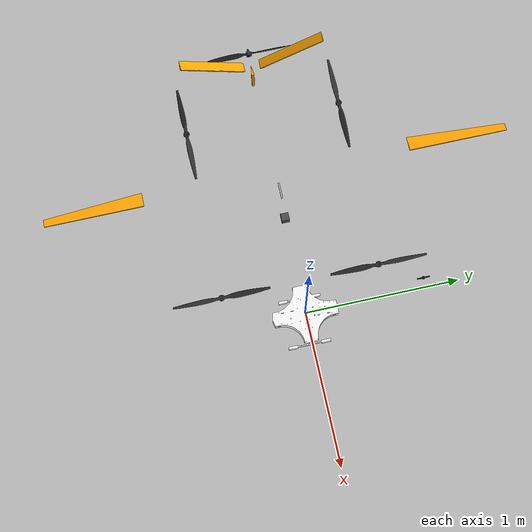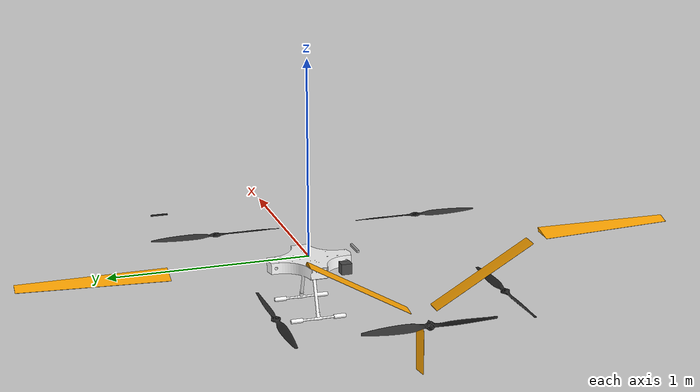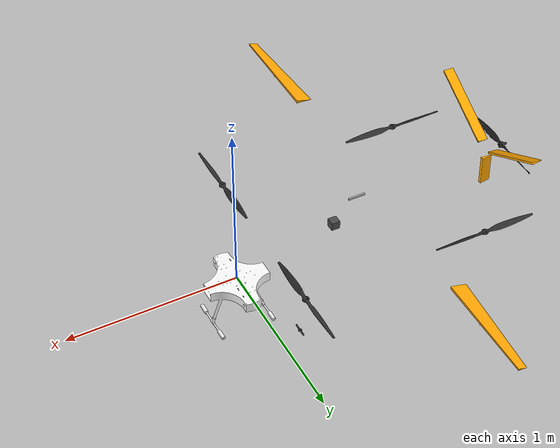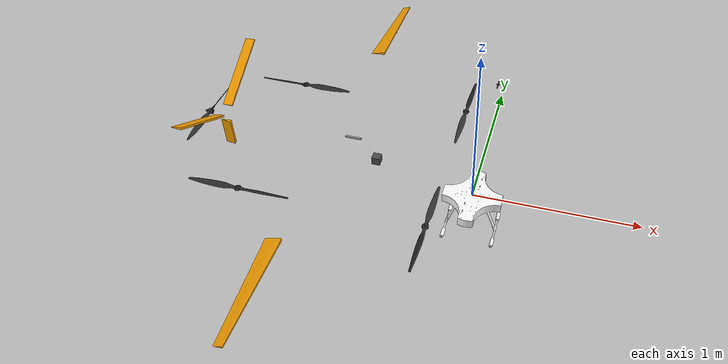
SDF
<?xml version="1.0"?>
<!-- This was manually edited after being generated from URDF -->
<sdf version='1.5'>
  <model name='sentaero6_prod'>
    <pose>0 0 0 0 0 0</pose>

    <link name='base_link'>
      <pose>0 0 0 0 0 1.57</pose>
      <inertial>
        <pose>0 0.739251 0.291891 0 -0 0</pose>
        <mass>17.08456</mass>
        <inertia>
          <ixx>3</ixx>
          <ixy>0</ixy>
          <ixz>0</ixz>
          <iyy>5</iyy>
          <iyz>0</iyz>
          <izz>6.754</izz>
        </inertia>
      </inertial>
      <collision name='base_link_collision'>
        <pose>0 0.9 -0.01 0 -0 0</pose>
        <geometry>
          <box>
            <size>3 1.7 0.05</size>
          </box>
        </geometry>
        <surface>
          <contact>
            <ode>
              <kp>100000</kp>
              <kd>1.0</kd>
              <max_vel>0.1</max_vel>
              <min_depth>0.001</min_depth>
            </ode>
          </contact>
          <friction>
            <ode/>
          </friction>
        </surface>
      </collision>
      <visual name='base_link_visual'>
        <pose>0 0 0 0 -0 0</pose>
        <geometry>
          <mesh>
            <scale>0.001 0.001 0.001</scale>
            <uri>model://sentaero6_prod/meshes/base_link.stl</uri>
          </mesh>
        </geometry>
        <material>
          <!-- flat white -->
          <ambient>0.85 0.85 0.85 1.0</ambient>
          <diffuse>1.0 1.0 1.0 1.0</diffuse>
          <!-- high‐gloss highlight -->
          <specular>0.8 0.8 0.8 1.0</specular>
          <!-- no self‐illumination -->
          <emissive>0.0 0.0 0.0 1.0</emissive>
        </material>
        <transparency>0</transparency>
      </visual>
      <self_collide>0</self_collide>
      <velocity_decay/>
      <gravity>1</gravity>
    </link>

    <link name='sentaero6_prod/imu_link'>
      <pose relative_to='sentaero6_prod/imu_joint'>0 0 0 0 0 0</pose>
      <inertial>
        <pose>0 0 0 0 0 0</pose>
        <mass>0.015</mass>
        <inertia>
          <ixx>1e-05</ixx>
          <ixy>0</ixy>
          <ixz>0</ixz>
          <iyy>1e-05</iyy>
          <iyz>0</iyz>
          <izz>1e-05</izz>
        </inertia>
      </inertial>
      <visual name='imu_link_visual'>
        <pose>0 0 0 0 -0 0</pose>
        <geometry>
          <box>
            <size>0.1 0.01 0.01</size>
          </box>
        </geometry>
      </visual>
    </link>
    <joint name='sentaero6_prod/imu_joint' type='revolute'>
      <pose relative_to='base_link'>-1e-06 0.739226 0.291889 0 -0 -1.57079632679</pose>
      <child>sentaero6_prod/imu_link</child>
      <parent>base_link</parent>
      <axis>
        <xyz>1 0 0</xyz>
        <limit>
          <lower>0</lower>
          <upper>0</upper>
          <effort>0</effort>
          <velocity>0</velocity>
        </limit>
        <dynamics>
          <spring_reference>0</spring_reference>
          <spring_stiffness>0</spring_stiffness>
        </dynamics>
        <use_parent_model_frame>1</use_parent_model_frame>
      </axis>
    </joint>

    <include>
      <uri>model://airspeed</uri>
      <pose relative_to='base_link'>-1e-06 0.739226 0.291889 0 -0 -1.57079632679</pose>
      <name>airspeed</name>
    </include>
    <joint name='airspeed_joint' type='fixed'>
      <child>airspeed::link</child>
      <parent>base_link</parent>
    </joint>

    <include>
      <uri>model://gps</uri>
      <pose relative_to='base_link'>-1e-06 0.739226 0.291889 0 -0 -1.57</pose>
      <name>gps</name>
    </include>
    <joint name='gps_joint' type='fixed'>
      <child>gps::link</child>
      <parent>base_link</parent>
    </joint>

    <link name="camera_link">
      <pose>-0.6 0 0.15 0 1.57 0</pose>
      <inertial>
        <pose>0 0 0 0 0 0</pose>
        <mass>0.1</mass>
        <inertia>
          <ixx>0.001</ixx>
          <ixy>0</ixy>
          <ixz>0</ixz>
          <iyy>0.001</iyy>
          <iyz>0</iyz>
          <izz>0.001</izz>
        </inertia>
      </inertial>
      <collision name='camera_collision'>
        <pose>0 0 0 0 0 0</pose>
        <geometry>
          <sphere>
            <radius>0.035</radius>
          </sphere>
        </geometry>
        <surface>
          <friction>
            <ode>
              <mu>1</mu>
              <mu2>1</mu2>
            </ode>
          </friction>
          <contact>
            <ode>
              <kp>1e+8</kp>
              <kd>1</kd>
              <max_vel>0.01</max_vel>
              <min_depth>0.001</min_depth>
            </ode>
          </contact>
        </surface>
      </collision>
      <visual name='camera_visual'>
        <pose>0 0 0 0 0 3.141592</pose>
        <geometry>
          <box>
            <size>0.05 0.05 0.05</size>
          </box>
        </geometry>
        <material>
          <script>
            <name>Gazebo/DarkGrey</name>
            <uri>file://media/materials/scripts/gazebo.material</uri>
          </script>
        </material>
      </visual>
      <sensor name="camera_imu" type="imu">
        <always_on>1</always_on>
      </sensor>
      <sensor name="camera" type="camera">
        <pose>0 0 0 0 0 0</pose>
        <camera>
          <horizontal_fov>2.0</horizontal_fov>
          <image>
            <format>R8G8B8</format>
            <width>640</width>
            <height>360</height>
          </image>
          <clip>
            <near>0.05</near>
            <far>15000</far>
          </clip>
        </camera>
        <always_on>1</always_on>
        <update_rate>10</update_rate>
        <visualize>false</visualize>
        <plugin name="GstCameraPlugin" filename="libgazebo_gst_camera_plugin.so">
            <robotNamespace></robotNamespace>
            <udpHost>127.0.0.1</udpHost>
            <udpPort>5600</udpPort>
        </plugin>
        <plugin name="GstCameraPlugin2" filename="libgazebo_gst_camera_plugin.so">
            <robotNamespace></robotNamespace>
            <udpHost>127.0.0.1</udpHost>
            <udpPort>5601</udpPort>
        </plugin>
        <plugin name="CameraManagerPlugin" filename="libgazebo_camera_manager_plugin.so">
            <robotNamespace>sentaero6_prod</robotNamespace>
            <interval>1</interval>
            <width>3840</width>
            <height>2160</height>
            <maximum_zoom>8.0</maximum_zoom>
            <video_uri>udp://127.0.0.1:5600</video_uri>
            <system_id>1</system_id>
            <cam_component_id>100</cam_component_id>
            <mavlink_cam_udp_port>14530</mavlink_cam_udp_port>
        </plugin>
      </sensor>
    </link>
    <joint name='camera_joint' type='fixed'>
      <child>camera_link</child>
      <parent>base_link</parent>
      <axis>
        <xyz>0 -1 0</xyz>
        <limit>
          <lower>-1.5708</lower>
          <upper>0.7854</upper>
          <effort>100</effort>
          <velocity>-1</velocity>
        </limit>
        <dynamics>
          <damping>0.1</damping>
        </dynamics>
        <use_parent_model_frame>1</use_parent_model_frame>
      </axis>
      <physics>
        <ode>
          <implicit_spring_damper>1</implicit_spring_damper>
          <limit>
            <cfm>0.1</cfm>
            <erp>0.2</erp>
          </limit>
        </ode>
      </physics>
    </joint>

    <joint name='front_left_prop_rev' type='revolute'>
      <pose relative_to='base_link'>0.500381 0.16 0.223364 0 -0 0</pose>
      <parent>base_link</parent>
      <child>front_left_prop_1</child>
      <axis>
        <xyz>0 0 1</xyz>
        <limit>
          <lower>-1e+16</lower>
          <upper>1e+16</upper>
        </limit>
        <dynamics>
          <spring_reference>0</spring_reference>
          <spring_stiffness>0</spring_stiffness>
        </dynamics>
      </axis>
      <sensor name="front_left_prop_force_sensor" type="force_torque">
        <always_on>1</always_on>
        <update_rate>200</update_rate>          <!-- must be > 0 -->
        <visualize>false</visualize>             <!-- will also draw arrows in GUI -->
        <topic>front_left_prop_force/wrench</topic>               <!-- choose a simple topic name -->
        <force_torque>
          <frame>child</frame>
          <measure_direction>child_to_parent</measure_direction>
        </force_torque>
      </sensor>
    </joint>
    <link name='front_left_prop_1'>
      <pose relative_to='front_left_prop_rev'>0 0 0 0 -0 0</pose>
      <inertial>
        <pose>-0 -0 -0.00365 0 -0 0</pose>
        <mass>0.005</mass>
        <inertia>
          <ixx>9.75e-07</ixx>
          <ixy>0</ixy>
          <ixz>0</ixz>
          <iyy>0.000166704</iyy>
          <iyz>0</iyz>
          <izz>0.000167604</izz>
        </inertia>
      </inertial>
      <collision name='front_left_prop_1_collision'>
        <pose>-0.500381 -0.16 -0.223364 0 -0 0</pose>
        <geometry>
          <mesh>
            <scale>0.001 0.001 0.001</scale>
            <uri>model://sentaero6_prod/meshes/front_left_prop_1.stl</uri>
          </mesh>
        </geometry>
        <surface>
          <contact>
            <ode/>
          </contact>
          <friction>
            <ode/>
          </friction>
        </surface>
      </collision>
      <visual name='front_left_prop_1_visual'>
        <pose>-0.500381 -0.16 -0.223364 0 -0 0</pose>
        <geometry>
          <mesh>
            <scale>0.001 0.001 0.001</scale>
            <uri>model://sentaero6_prod/meshes/front_left_prop_1.stl</uri>
          </mesh>
        </geometry>
        <material>
          <ambient>.175 .175 .175 1.0</ambient>
          <diffuse>.175 .175 .175 1.0</diffuse>
        </material>
      </visual>
      <gravity>1</gravity>
      <velocity_decay/>
      <self_collide>0</self_collide>
    </link>

    <joint name='front_right_prop_rev' type='revolute'>
      <pose relative_to='base_link'>-0.500381 0.16 0.223364 0 -0 0</pose>
      <parent>base_link</parent>
      <child>front_right_prop_1</child>
      <axis>
        <xyz>0 0 1</xyz>
        <limit>
          <lower>-1e+16</lower>
          <upper>1e+16</upper>
        </limit>
        <dynamics>
          <spring_reference>0</spring_reference>
          <spring_stiffness>0</spring_stiffness>
        </dynamics>
      </axis>
    </joint>
    <link name='front_right_prop_1'>
      <pose relative_to='front_right_prop_rev'>0 0 0 0 -0 0</pose>
      <inertial>
        <pose>-0 -0 -0.00365 0 -0 0</pose>
        <mass>0.005</mass>
        <inertia>
          <ixx>9.75e-07</ixx>
          <ixy>0</ixy>
          <ixz>0</ixz>
          <iyy>0.000166704</iyy>
          <iyz>0</iyz>
          <izz>0.000167604</izz>
        </inertia>
      </inertial>
      <collision name='front_right_prop_1_collision'>
        <pose>0.500381 -0.16 -0.223364 0 -0 0</pose>
        <geometry>
          <mesh>
            <scale>0.001 0.001 0.001</scale>
            <uri>model://sentaero6_prod/meshes/front_right_prop_1.stl</uri>
          </mesh>
        </geometry>
        <surface>
          <contact>
            <ode/>
          </contact>
          <friction>
            <ode/>
          </friction>
        </surface>
      </collision>
      <visual name='front_right_prop_1_visual'>
        <pose>0.500381 -0.16 -0.223364 0 -0 0</pose>
        <geometry>
          <mesh>
            <scale>0.001 0.001 0.001</scale>
            <uri>model://sentaero6_prod/meshes/front_right_prop_1.stl</uri>
          </mesh>
        </geometry>
        <material>
          <ambient>.175 .175 .175 1.0</ambient>
          <diffuse>.175 .175 .175 1.0</diffuse>
        </material>
      </visual>
      <gravity>1</gravity>
      <velocity_decay/>
      <self_collide>0</self_collide>
    </link>

    <joint name='rear_left_prop_rev' type='revolute'>
      <pose relative_to='base_link'>0.500381 1.26 0.223364 0 -0 0</pose>
      <parent>base_link</parent>
      <child>rear_left_prop_1</child>
      <axis>
        <xyz>0 0 1</xyz>
        <limit>
          <lower>-1e+16</lower>
          <upper>1e+16</upper>
        </limit>
        <dynamics>
          <spring_reference>0</spring_reference>
          <spring_stiffness>0</spring_stiffness>
        </dynamics>
      </axis>
    </joint>
    <link name='rear_left_prop_1'>
      <pose relative_to='rear_left_prop_rev'>0 0 0 0 -0 0</pose>
      <inertial>
        <pose>-0 0 -0.00365 0 -0 0</pose>
        <mass>0.005</mass>
        <inertia>
          <ixx>9.75e-07</ixx>
          <ixy>0</ixy>
          <ixz>0</ixz>
          <iyy>0.000166704</iyy>
          <iyz>0</iyz>
          <izz>0.000167604</izz>
        </inertia>
      </inertial>
      <collision name='rear_left_prop_1_collision'>
        <pose>-0.500381 -1.26 -0.223364 0 -0 0</pose>
        <geometry>
          <mesh>
            <scale>0.001 0.001 0.001</scale>
            <uri>model://sentaero6_prod/meshes/rear_left_prop_1.stl</uri>
          </mesh>
        </geometry>
        <surface>
          <contact>
            <ode/>
          </contact>
          <friction>
            <ode/>
          </friction>
        </surface>
      </collision>
      <visual name='rear_left_prop_1_visual'>
        <pose>-0.500381 -1.26 -0.223364 0 -0 0</pose>
        <geometry>
          <mesh>
            <scale>0.001 0.001 0.001</scale>
            <uri>model://sentaero6_prod/meshes/rear_left_prop_1.stl</uri>
          </mesh>
        </geometry>
        <material>
          <ambient>.175 .175 .175 1.0</ambient>
          <diffuse>.175 .175 .175 1.0</diffuse>
        </material>
      </visual>
      <gravity>1</gravity>
      <velocity_decay/>
      <self_collide>0</self_collide>
    </link>

    <joint name='rear_right_prop_rev' type='revolute'>
      <pose relative_to='base_link'>-0.500381 1.26 0.223364 0 -0 0</pose>
      <parent>base_link</parent>
      <child>rear_right_prop_1</child>
      <axis>
        <xyz>0 0 1</xyz>
        <limit>
          <lower>-1e+16</lower>
          <upper>1e+16</upper>
        </limit>
        <dynamics>
          <spring_reference>0</spring_reference>
          <spring_stiffness>0</spring_stiffness>
        </dynamics>
      </axis>
    </joint>
    <link name='rear_right_prop_1'>
      <pose relative_to='rear_right_prop_rev'>0 0 0 0 -0 0</pose>
      <inertial>
        <pose>0 0 -0.00365 0 -0 0</pose>
        <mass>0.005</mass>
        <inertia>
          <ixx>9.75e-07</ixx>
          <ixy>0</ixy>
          <ixz>0</ixz>
          <iyy>0.000166704</iyy>
          <iyz>0</iyz>
          <izz>0.000167604</izz>
        </inertia>
      </inertial>
      <collision name='rear_right_prop_1_collision'>
        <pose>0.500381 -1.26 -0.223364 0 -0 0</pose>
        <geometry>
          <mesh>
            <scale>0.001 0.001 0.001</scale>
            <uri>model://sentaero6_prod/meshes/rear_right_prop_1.stl</uri>
          </mesh>
        </geometry>
        <surface>
          <contact>
            <ode/>
          </contact>
          <friction>
            <ode/>
          </friction>
        </surface>
      </collision>
      <visual name='rear_right_prop_1_visual'>
        <pose>0.500381 -1.26 -0.223364 0 -0 0</pose>
        <geometry>
          <mesh>
            <scale>0.001 0.001 0.001</scale>
            <uri>model://sentaero6_prod/meshes/rear_right_prop_1.stl</uri>
          </mesh>
        </geometry>
        <material>
          <ambient>.175 .175 .175 1.0</ambient>
          <diffuse>.175 .175 .175 1.0</diffuse>
        </material>
      </visual>
      <gravity>1</gravity>
      <velocity_decay/>
      <self_collide>0</self_collide>
    </link>

    <joint name='pusher_prop_rev' type='revolute'>
      <pose relative_to='base_link'>-1e-06 1.66832 0.291889 0 0 0</pose>
      <parent>base_link</parent>
      <child>pusher_prop_1</child>
      <axis>
        <xyz>0 1 0</xyz>
        <limit>
          <lower>-1e+16</lower>
          <upper>1e+16</upper>
        </limit>
        <dynamics>
          <spring_reference>0</spring_reference>
          <spring_stiffness>0</spring_stiffness>
        </dynamics>
      </axis>
      <sensor name="pusher_force_sensor" type="force_torque">
        <always_on>1</always_on>
        <update_rate>200</update_rate>          <!-- must be > 0 -->
        <visualize>false</visualize>             <!-- will also draw arrows in GUI -->
        <topic>pusher_prop_1/wrench</topic>      <!-- choose a simple topic name -->
        <force_torque>
          <frame>child</frame>
          <measure_direction>child_to_parent</measure_direction>
        </force_torque>
      </sensor>
    </joint>
    <link name='pusher_prop_1'>
      <pose relative_to='pusher_prop_rev'>0 0 0 1.57 0 0</pose>
      <inertial>
        <pose>0 0 -0.00365 0 0 0</pose>
        <mass>0.005</mass>
        <inertia>
          <ixx>9.75e-07</ixx>
          <ixy>0</ixy>
          <ixz>0</ixz>
          <iyy>0.000166704</iyy>
          <iyz>0</iyz>
          <izz>0.000167604</izz>
        </inertia>
      </inertial>
      <collision name='pusher_prop_1_collision'>
        <pose>0 -0.293122 1.66832 -1.57 -0 0</pose>
        <geometry>
          <mesh>
            <scale>0.001 0.001 0.001</scale>
            <uri>model://sentaero6_prod/meshes/pusher_prop_1.stl</uri>
          </mesh>
        </geometry>
        <surface>
          <contact>
            <ode/>
          </contact>
          <friction>
            <ode/>
          </friction>
        </surface>
      </collision>
      <visual name='pusher_prop_1_visual'>
        <pose>0 -0.293122 1.66832 -1.57 -0 0</pose>
        <geometry>
          <mesh>
            <scale>0.001 0.001 0.001</scale>
            <uri>model://sentaero6_prod/meshes/pusher_prop_1.stl</uri>
          </mesh>
        </geometry>
        <material>
          <ambient>.175 .175 .175 1.0</ambient>
          <diffuse>.175 .175 .175 1.0</diffuse>
        </material>
      </visual>
      <gravity>1</gravity>
      <velocity_decay/>
      <self_collide>0</self_collide>
    </link>

    <joint name='left_aileron_rev' type='revolute'>
      <pose relative_to='base_link'>1.13918 0.815681 0.308045 0 -0 0</pose>
      <parent>base_link</parent>
      <child>left_aileron_1</child>
      <axis>
        <xyz>0.999982 -0.000405 -0.005981</xyz>
        <limit>
          <!-- -30/+30 deg. -->
          <lower>-0.53</lower>
          <upper>0.53</upper>
        </limit>
        <dynamics>
          <spring_reference>0</spring_reference>
          <spring_stiffness>0</spring_stiffness>
        </dynamics>
      </axis>
    </joint>
    <link name='left_aileron_1'>
      <pose relative_to='left_aileron_rev'>0 0 0 0 -0 0</pose>
      <inertial>
        <pose>-0.021196 0.02562 0.002048 0 -0 0</pose>
        <mass>0.00000001</mass>
        <inertia>
          <ixx>0.000001</ixx>
          <ixy>0.0</ixy>
          <iyy>0.000001</iyy>
          <ixz>0.0</ixz>
          <iyz>0.0</iyz>
          <izz>0.000001</izz>
        </inertia>
      </inertial>
      <visual name='left_aileron_1_visual'>
        <pose>-1.13918 -0.815681 -0.308045 0 -0 0</pose>
        <geometry>
          <mesh>
            <scale>0.001 0.001 0.001</scale>
            <uri>model://sentaero6_prod/meshes/left_aileron_1.stl</uri>
          </mesh>
        </geometry>
        <material>
          <ambient>1.0 0.647 0.0 1.0</ambient>
          <diffuse>1.0 0.647 0.0 1.0</diffuse>
        </material>
        <plugin name="left_aileron_lift_visual" filename="libForceVisual.so">
          <topic_name>lift_force/left_aileron</topic_name>
          <color>Gazebo/Green</color>
        </plugin>
      </visual>
    </link>

    <joint name='right_aileron_rev' type='revolute'>
      <pose relative_to='base_link'>-1.13918 0.815681 0.308045 0 -0 0</pose>
      <parent>base_link</parent>
      <child>right_aileron_1</child>
      <axis>
        <xyz>0.999982 0.000405 0.005981</xyz>
        <limit>
          <!-- -30/+30 deg. -->
          <lower>-0.53</lower>
          <upper>0.53</upper>
        </limit>
        <dynamics>
          <damping>1.000</damping>
        </dynamics>
      </axis>
      <physics>
        <ode>
          <implicit_spring_damper>1</implicit_spring_damper>
        </ode>
      </physics>
    </joint>
    <link name='right_aileron_1'>
      <pose relative_to='right_aileron_rev'>0 0 0 0 -0 0</pose>
      <inertial>
        <pose>0.021196 0.02562 0.002048 0 -0 0</pose>
        <mass>0.00000001</mass>
        <inertia>
          <ixx>0.000001</ixx>
          <ixy>0.0</ixy>
          <iyy>0.000001</iyy>
          <ixz>0.0</ixz>
          <iyz>0.0</iyz>
          <izz>0.000001</izz>
        </inertia>
      </inertial>
      <visual name='right_aileron_1_visual'>
        <pose>1.13918 -0.815681 -0.308045 0 -0 0</pose>
        <geometry>
          <mesh>
            <scale>0.001 0.001 0.001</scale>
            <uri>model://sentaero6_prod/meshes/right_aileron_1.stl</uri>
          </mesh>
        </geometry>
        <material>
          <ambient>1.0 0.647 0.0 1.0</ambient>
          <diffuse>1.0 0.647 0.0 1.0</diffuse>
        </material>
        <plugin name="right_aileron_lift_visual" filename="libForceVisual.so">
          <topic_name>lift_force/right_aileron</topic_name>
          <color>Gazebo/Green</color>
        </plugin>
      </visual>
    </link>

    <joint name='left_elevator_rev' type='revolute'>
      <pose relative_to='base_link'>0.250728 1.55498 0.443305 0 -0 0</pose>
      <parent>base_link</parent>
      <child>left_elevator_1</child>
      <axis>
        <xyz>0.86631 8.7e-05 0.499507</xyz>
        <limit>
          <!-- -30/+30 deg. -->
          <lower>-0.53</lower>
          <upper>0.53</upper>
        </limit>
        <dynamics>
          <damping>1.000</damping>
        </dynamics>
      </axis>
      <physics>
        <ode>
          <implicit_spring_damper>1</implicit_spring_damper>
        </ode>
      </physics>
    </joint>
    <link name='left_elevator_1'>
      <pose relative_to='left_elevator_rev'>0 0 0 0 -0 0</pose>
      <inertial>
        <pose>0.002057 0.024244 -0.005466 0 -0 0</pose>
        <mass>0.00000001</mass>
        <inertia>
          <ixx>0.000001</ixx>
          <ixy>0.0</ixy>
          <iyy>0.000001</iyy>
          <ixz>0.0</ixz>
          <iyz>0.0</iyz>
          <izz>0.000001</izz>
        </inertia>
      </inertial>
      <visual name='left_elevator_1_visual'>
        <pose>-0.250728 -1.55498 -0.443305 0 -0 0</pose>
        <geometry>
          <mesh>
            <scale>0.001 0.001 0.001</scale>
            <uri>model://sentaero6_prod/meshes/left_elevator_1.stl</uri>
          </mesh>
        </geometry>
        <material>
          <ambient>1.0 0.647 0.0 1.0</ambient>
          <diffuse>1.0 0.647 0.0 1.0</diffuse>
        </material>
        <plugin name="left_elevator_lift_visual" filename="libForceVisual.so">
          <topic_name>lift_force/left_elevator</topic_name>
          <color>Gazebo/Green</color>
        </plugin>
      </visual>
    </link>

    <joint name='right_elevator_rev' type='revolute'>
      <pose relative_to='base_link'>-0.250728 1.55498 0.443305 0 -0 0</pose>
      <parent>base_link</parent>
      <child>right_elevator_1</child>
      <axis>
        <xyz>0.86631 -8.7e-05 -0.499507</xyz>
        <limit>
          <!-- -30/+30 deg. -->
          <lower>-0.53</lower>
          <upper>0.53</upper>
        </limit>
        <dynamics>
          <damping>1.000</damping>
        </dynamics>
      </axis>
      <physics>
        <ode>
          <implicit_spring_damper>1</implicit_spring_damper>
        </ode>
      </physics>
    </joint>
    <link name='right_elevator_1'>
      <pose relative_to='right_elevator_rev'>0 0 0 0 -0 0</pose>
      <inertial>
        <pose>-0.002057 0.024244 -0.005466 0 -0 0</pose>
        <mass>0.00000001</mass>
        <inertia>
          <ixx>0.000001</ixx>
          <ixy>0.0</ixy>
          <iyy>0.000001</iyy>
          <ixz>0.0</ixz>
          <iyz>0.0</iyz>
          <izz>0.000001</izz>
        </inertia>
      </inertial>
      <visual name='right_elevator_1_visual'>
        <pose>0.250728 -1.55498 -0.443305 0 -0 0</pose>
        <geometry>
          <mesh>
            <scale>0.001 0.001 0.001</scale>
            <uri>model://sentaero6_prod/meshes/right_elevator_1.stl</uri>
          </mesh>
        </geometry>
        <material>
          <ambient>1.0 0.647 0.0 1.0</ambient>
          <diffuse>1.0 0.647 0.0 1.0</diffuse>
        </material>
        <plugin name="right_elevator_lift_visual" filename="libForceVisual.so">
          <topic_name>lift_force/right_elevator</topic_name>
          <color>Gazebo/Green</color>
        </plugin>
      </visual>
    </link>

    <joint name='rudder_rev' type='revolute'>
      <pose relative_to='base_link'>-0.00911 1.55496 0.151147 0 -0 0</pose>
      <parent>base_link</parent>
      <child>rudder_1</child>
      <axis>
        <xyz>0.001775 0.000111 -0.999998</xyz>
        <limit>
          <!-- -30/+30 deg. -->
          <lower>-0.1</lower>
          <upper>0.1</upper>
        </limit>
        <dynamics>
          <damping>1.000</damping>
        </dynamics>
      </axis>
      <physics>
        <ode>
          <implicit_spring_damper>1</implicit_spring_damper>
        </ode>
      </physics>
    </joint>
    <link name='rudder_1'>
      <pose relative_to='rudder_rev'>0 0 0 0 -0 0</pose>
      <inertial>
        <pose>0.009021 0.024 -9.4e-05 0 -0 0</pose>
        <mass>0.00000001</mass>
        <inertia>
          <ixx>0.000001</ixx>
          <ixy>0.0</ixy>
          <iyy>0.000001</iyy>
          <ixz>0.0</ixz>
          <iyz>0.0</iyz>
          <izz>0.000001</izz>
        </inertia>
      </inertial>
      <visual name='rudder_1_visual'>
        <pose>0.00911 -1.55496 -0.151147 0 -0 0</pose>
        <geometry>
          <mesh>
            <scale>0.001 0.001 0.001</scale>
            <uri>model://sentaero6_prod/meshes/rudder_1.stl</uri>
          </mesh>
        </geometry>
        <material>
          <ambient>1.0 0.647 0.0 1.0</ambient>
          <diffuse>1.0 0.647 0.0 1.0</diffuse>
        </material>
        <plugin name="rudder_lift_visual" filename="libForceVisual.so">
          <topic_name>lift_force/rudder</topic_name>
          <color>Gazebo/Green</color>
        </plugin>
      </visual>
    </link>

    <plugin filename="libLiftDragPlugin.so" name="left_aileron_lift">
      <a0>0.052</a0>
      <cla>5.51</cla>
      <cda>0.32</cda>
      <cma>0.8</cma>
      <alpha_stall>0.19</alpha_stall>
      <cla_stall>-5.51</cla_stall>
      <cda_stall>-0.32</cda_stall>
      <cma_stall>0</cma_stall>
      <cp>0.75 0.7 0.308045</cp>
      <area>1.096</area>
      <air_density>1.14</air_density>
      <forward>0 -1 0</forward>
      <upward>0 0 1</upward>
      <link_name>base_link</link_name>
      <topic_name>lift_force/left_aileron</topic_name>
      <control_joint_name>left_aileron_rev</control_joint_name>
      <control_joint_rad_to_cl>-1</control_joint_rad_to_cl>
      <robotNamespace></robotNamespace>
      <windSubTopic>world_wind</windSubTopic>
    </plugin>
    <plugin filename="libLiftDragPlugin.so" name="right_aileron_lift">
      <a0>0.052</a0>
      <cla>5.51</cla>
      <cda>0.32</cda>
      <cma>0.8</cma>
      <alpha_stall>0.19</alpha_stall>
      <cla_stall>-5.51</cla_stall>
      <cda_stall>-0.32</cda_stall>
      <cma_stall>0</cma_stall>
      <cp>-0.75 0.7 0.308045</cp>
      <area>1.096</area>
      <air_density>1.14</air_density>
      <forward>0 -1 0</forward>
      <upward>0 0 1</upward>
      <link_name>base_link</link_name>
      <topic_name>lift_force/right_aileron</topic_name>
      <control_joint_name>right_aileron_rev</control_joint_name>
      <control_joint_rad_to_cl>-1</control_joint_rad_to_cl>
      <robotNamespace></robotNamespace>
      <windSubTopic>world_wind</windSubTopic>
    </plugin>
    <plugin filename="libLiftDragPlugin.so" name="right_elevator_lift">
      <a0>0.1</a0>
      <cla>5.51</cla>
      <cda>0.32</cda>
      <cma>0.8</cma>
      <alpha_stall>0.19</alpha_stall>
      <cla_stall>-5.51</cla_stall>
      <cda_stall>-0.32</cda_stall>
      <cma_stall>0</cma_stall>
      <cp>-0.250728 1.45 0.443305</cp>
      <area>0.28</area>
      <air_density>1.14</air_density>
      <forward>0 -1 0</forward>
      <upward>-0.5 0 -0.866</upward>
      <link_name>base_link</link_name>
      <topic_name>lift_force/right_elevator</topic_name>
      <control_joint_name>right_elevator_rev</control_joint_name>
      <control_joint_rad_to_cl>2</control_joint_rad_to_cl>
      <robotNamespace></robotNamespace>
      <windSubTopic>world_wind</windSubTopic>
    </plugin>
    <plugin filename="libLiftDragPlugin.so" name="left_elevator_lift">
      <a0>0.1</a0>
      <cla>5.51</cla>
      <cda>0.32</cda>
      <cma>0.8</cma>
      <alpha_stall>0.19</alpha_stall>
      <cla_stall>-5.51</cla_stall>
      <cda_stall>-0.32</cda_stall>
      <cma_stall>0</cma_stall>
      <cp>0.250728 1.45 0.443305</cp>
      <area>0.28</area>
      <air_density>1.14</air_density>
      <forward>0 -1 0</forward>
      <upward>0.5 0 -0.866</upward>
      <link_name>base_link</link_name>
      <topic_name>lift_force/left_elevator</topic_name>
      <control_joint_name>left_elevator_rev</control_joint_name>
      <control_joint_rad_to_cl>2</control_joint_rad_to_cl>
      <robotNamespace></robotNamespace>
      <windSubTopic>world_wind</windSubTopic>
    </plugin>
    <plugin filename="libLiftDragPlugin.so" name="rudder_lift">
      <a0>0.0</a0>
      <cla>5.6</cla>
      <cda>0.16</cda>
      <cma>0.0</cma>
      <alpha_stall>0.3391428111</alpha_stall>
      <cla_stall>-3.85</cla_stall>
      <cda_stall>-0.9233984055</cda_stall>
      <cma_stall>0</cma_stall>
      <cp>0 1.55496 0.151147</cp>
      <area>0.05</area>
      <air_density>1.2041</air_density>
      <forward>0 -1 0</forward>
      <upward>1 0 0</upward>
      <link_name>base_link</link_name>
      <topic_name>lift_force/rudder</topic_name>
      <control_joint_name>rudder_rev</control_joint_name>
      <control_joint_rad_to_cl>-2</control_joint_rad_to_cl>
      <robotNamespace></robotNamespace>
      <windSubTopic>world_wind</windSubTopic>
    </plugin>

    <plugin filename="libgazebo_motor_model.so" name="front_right_motor_model">
      <robotNamespace></robotNamespace>
      <jointName>front_right_prop_rev</jointName>
      <linkName>front_right_prop_1</linkName>
      <commandSubTopic>/gazebo/command/motor_speed</commandSubTopic>
      <motorNumber>0</motorNumber>
      <motorSpeedPubTopic>/motor_speed/0</motorSpeedPubTopic>
      <turningDirection>ccw</turningDirection>
      <timeConstantUp>0.0125</timeConstantUp>
      <timeConstantDown>0.025</timeConstantDown>
      <maxRotVelocity>600</maxRotVelocity>
      <motorConstant>4.2e-04</motorConstant>
      <momentConstant>0.1</momentConstant>
      <rotorDragCoefficient>0.0006</rotorDragCoefficient>
      <rollingMomentCoefficient>1e-06</rollingMomentCoefficient>
      <rotorVelocitySlowdownSim>20</rotorVelocitySlowdownSim>
    </plugin>
    <plugin filename="libgazebo_motor_model.so" name="rear_left_motor_model">
      <robotNamespace></robotNamespace>
      <jointName>rear_left_prop_rev</jointName>
      <linkName>rear_left_prop_1</linkName>
      <commandSubTopic>/gazebo/command/motor_speed</commandSubTopic>
      <motorNumber>1</motorNumber>
      <motorSpeedPubTopic>/motor_speed/1</motorSpeedPubTopic>
      <turningDirection>ccw</turningDirection>
      <timeConstantUp>0.0125</timeConstantUp>
      <timeConstantDown>0.025</timeConstantDown>
      <maxRotVelocity>600</maxRotVelocity>
      <motorConstant>4.2e-04</motorConstant>
      <momentConstant>0.1</momentConstant>
      <rotorDragCoefficient>0.0006</rotorDragCoefficient>
      <rollingMomentCoefficient>1e-06</rollingMomentCoefficient>
      <rotorVelocitySlowdownSim>20</rotorVelocitySlowdownSim>
    </plugin>
    <plugin filename="libgazebo_motor_model.so" name="front_left_motor_model">
      <robotNamespace></robotNamespace>
      <jointName>front_left_prop_rev</jointName>
      <linkName>front_left_prop_1</linkName>
      <commandSubTopic>/gazebo/command/motor_speed</commandSubTopic>
      <motorNumber>2</motorNumber>
      <motorSpeedPubTopic>/motor_speed/2</motorSpeedPubTopic>
      <turningDirection>cw</turningDirection>
      <timeConstantUp>0.0125</timeConstantUp>
      <timeConstantDown>0.025</timeConstantDown>
      <maxRotVelocity>600</maxRotVelocity>
      <motorConstant>4.2e-04</motorConstant>
      <momentConstant>0.1</momentConstant>
      <rotorDragCoefficient>0.0006</rotorDragCoefficient>
      <rollingMomentCoefficient>1e-06</rollingMomentCoefficient>
      <rotorVelocitySlowdownSim>20</rotorVelocitySlowdownSim>
    </plugin>
    <plugin filename="libgazebo_motor_model.so" name="rear_right_motor_model">
      <robotNamespace></robotNamespace>
      <jointName>rear_right_prop_rev</jointName>
      <linkName>rear_right_prop_1</linkName>
      <commandSubTopic>/gazebo/command/motor_speed</commandSubTopic>
      <motorNumber>3</motorNumber>
      <motorSpeedPubTopic>/motor_speed/3</motorSpeedPubTopic>
      <turningDirection>cw</turningDirection>
      <timeConstantUp>0.0125</timeConstantUp>
      <timeConstantDown>0.025</timeConstantDown>
      <maxRotVelocity>600</maxRotVelocity>
      <motorConstant>4.2e-04</motorConstant>
      <momentConstant>0.1</momentConstant>
      <rotorDragCoefficient>0.0006</rotorDragCoefficient>
      <rollingMomentCoefficient>1e-06</rollingMomentCoefficient>
      <rotorVelocitySlowdownSim>20</rotorVelocitySlowdownSim>
    </plugin>
    <plugin filename="libgazebo_motor_model.so" name="pusher_motor_model">
      <robotNamespace></robotNamespace>
      <jointName>pusher_prop_rev</jointName>
      <linkName>pusher_prop_1</linkName>
      <commandSubTopic>/gazebo/command/motor_speed</commandSubTopic>
      <motorNumber>4</motorNumber>
      <motorSpeedPubTopic>/motor_speed/4</motorSpeedPubTopic>
      <turningDirection>cw</turningDirection>
      <timeConstantUp>0.0125</timeConstantUp>
      <timeConstantDown>0.025</timeConstantDown>
      <maxRotVelocity>1500</maxRotVelocity>
      <motorConstant>4.2e-04</motorConstant>
      <momentConstant>0.01</momentConstant>
      <rotorDragCoefficient>3.05748265265996e-08</rotorDragCoefficient>  <!-- was 3.05748265265996e-08 -->
      <rollingMomentCoefficient>1e-06</rollingMomentCoefficient>  <!-- was 1e-08 -->
      <rotorVelocitySlowdownSim>20</rotorVelocitySlowdownSim>
    </plugin>

    <plugin name='groundtruth_plugin' filename='libgazebo_groundtruth_plugin.so'>
      <robotNamespace/>
    </plugin>
    <plugin name='magnetometer_plugin' filename='libgazebo_magnetometer_plugin.so'>
      <robotNamespace/>
      <pubRate>100</pubRate>
      <noiseDensity>0.0004</noiseDensity>
      <randomWalk>6.4e-06</randomWalk>
      <biasCorrelationTime>600</biasCorrelationTime>
      <magTopic>/mag</magTopic>
    </plugin>
    <plugin name='barometer_plugin' filename='libgazebo_barometer_plugin.so'>
      <robotNamespace/>
      <pubRate>50</pubRate>
      <baroTopic>/baro</baroTopic>
    </plugin>
    <plugin name='mavlink_interface' filename='libgazebo_mavlink_interface.so'>
      <robotNamespace></robotNamespace>
      <imuSubTopic>/imu</imuSubTopic>
      <magSubTopic>/mag</magSubTopic>
      <baroSubTopic>/baro</baroSubTopic>
      <mavlink_addr>INADDR_ANY</mavlink_addr>
      <mavlink_tcp_port>4560</mavlink_tcp_port>
      <mavlink_udp_port>14560</mavlink_udp_port>
      <serialEnabled>0</serialEnabled>
      <serialDevice>/dev/ttyACM0</serialDevice>
      <baudRate>921600</baudRate>
      <qgc_addr>INADDR_ANY</qgc_addr>
      <qgc_udp_port>14550</qgc_udp_port>
      <sdk_addr>INADDR_ANY</sdk_addr>
      <sdk_udp_port>14540</sdk_udp_port>
      <hil_mode>0</hil_mode>
      <hil_state_level>false</hil_state_level>
      <enable_lockstep>true</enable_lockstep>
      <use_tcp>true</use_tcp>
      <motorSpeedCommandPubTopic>/gazebo/command/motor_speed</motorSpeedCommandPubTopic>
      <control_channels>
        <channel name="rotor0">
          <input_index>0</input_index>
          <input_offset>0</input_offset>
          <input_scaling>500</input_scaling>
          <zero_position_disarmed>0</zero_position_disarmed>
          <zero_position_armed>0</zero_position_armed>
          <joint_control_type>velocity</joint_control_type>
          <joint_name>front_right_prop_rev</joint_name>
        </channel>
        <channel name="rotor1">
          <input_index>1</input_index>
          <input_offset>0</input_offset>
          <input_scaling>500</input_scaling>
          <zero_position_disarmed>0</zero_position_disarmed>
          <zero_position_armed>0</zero_position_armed>
          <joint_control_type>velocity</joint_control_type>
          <joint_name>rear_left_prop_rev</joint_name>
        </channel>
        <channel name="rotor2">
          <input_index>2</input_index>
          <input_offset>0</input_offset>
          <input_scaling>500</input_scaling>
          <zero_position_disarmed>0</zero_position_disarmed>
          <zero_position_armed>0</zero_position_armed>
          <joint_control_type>velocity</joint_control_type>
          <joint_name>front_left_prop_rev</joint_name>
        </channel>
        <channel name="rotor3">
          <input_index>3</input_index>
          <input_offset>0</input_offset>
          <input_scaling>500</input_scaling>
          <zero_position_disarmed>0</zero_position_disarmed>
          <zero_position_armed>0</zero_position_armed>
          <joint_control_type>velocity</joint_control_type>
          <joint_name>rear_right_prop_rev</joint_name>
        </channel>
        <channel name="rotor4">
          <input_index>4</input_index>
          <input_offset>0</input_offset>
          <input_scaling>1000</input_scaling>   <!-- was 2500 -->
          <zero_position_disarmed>0</zero_position_disarmed>
          <zero_position_armed>0</zero_position_armed>
          <joint_control_type>velocity</joint_control_type>
          <joint_name>pusher_prop_rev</joint_name>
        </channel>
        <channel name="left_aileron">
          <input_index>5</input_index>
          <input_offset>0</input_offset>
          <input_scaling>1</input_scaling>
          <zero_position_disarmed>0</zero_position_disarmed>
          <zero_position_armed>0</zero_position_armed>
          <joint_control_type>position_kinematic</joint_control_type>
          <joint_name>left_aileron_rev</joint_name>
        </channel>
        <channel name="right_aileron">
          <input_index>6</input_index>
          <input_offset>0</input_offset>
          <input_scaling>1</input_scaling>
          <zero_position_disarmed>0</zero_position_disarmed>
          <zero_position_armed>0</zero_position_armed>
          <joint_control_type>position_kinematic</joint_control_type>
          <joint_name>right_aileron_rev</joint_name>
        </channel>
        <channel name="left_elevator">
          <input_index>7</input_index>
          <input_offset>0</input_offset>
          <input_scaling>1</input_scaling>
          <zero_position_disarmed>0</zero_position_disarmed>
          <zero_position_armed>0</zero_position_armed>
          <joint_control_type>position_kinematic</joint_control_type>
          <joint_name>left_elevator_rev</joint_name>
        </channel>
        <channel name="right_elevator">
          <input_index>8</input_index>
          <input_offset>0</input_offset>
          <input_scaling>1</input_scaling>
          <zero_position_disarmed>0</zero_position_disarmed>
          <zero_position_armed>0</zero_position_armed>
          <joint_control_type>position_kinematic</joint_control_type>
          <joint_name>right_elevator_rev</joint_name>
        </channel>
      </control_channels>
    </plugin>
    <plugin name='gazebo_imu_plugin' filename='libgazebo_imu_plugin.so'>
      <robotNamespace></robotNamespace>
      <linkName>sentaero6_prod/imu_link</linkName>
      <imuTopic>/imu</imuTopic>
      <gyroscopeNoiseDensity>0.0003394</gyroscopeNoiseDensity>
      <gyroscopeRandomWalk>3.8785e-05</gyroscopeRandomWalk>
      <gyroscopeBiasCorrelationTime>1000.0</gyroscopeBiasCorrelationTime>
      <gyroscopeTurnOnBiasSigma>0.0087</gyroscopeTurnOnBiasSigma>
      <accelerometerNoiseDensity>0.004</accelerometerNoiseDensity>
      <accelerometerRandomWalk>0.006</accelerometerRandomWalk>
      <accelerometerBiasCorrelationTime>300.0</accelerometerBiasCorrelationTime>
      <accelerometerTurnOnBiasSigma>0.196</accelerometerTurnOnBiasSigma>
    </plugin>
    <static>0</static>
  </model>
</sdf>

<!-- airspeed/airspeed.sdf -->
<sdf version="1.6">
  <model name="airspeed">
    <link name="link">
      <pose>0 0 0 0 0 0</pose>
      <inertial>
        <pose>0 0 0 0 0 0</pose>
        <mass>0.015</mass>
        <inertia>
          <ixx>1e-05</ixx>
          <ixy>0</ixy>
          <ixz>0</ixz>
          <iyy>1e-05</iyy>
          <iyz>0</iyz>
          <izz>1e-05</izz>
        </inertia>
      </inertial>
      <visual name="visual">
        <pose>0 0 0 0 1.57 0</pose>
        <geometry>
          <cylinder>
            <radius>0.004</radius>
            <length>0.08</length>
          </cylinder>
        </geometry>
        <material>
          <script>
            <name>Gazebo/Black</name>
          </script>
        </material>
      </visual>
      <sensor name="airspeed" type="gps">
        <pose>0 0 0 0 0 0</pose>
        <update_rate>5.0</update_rate>
        <always_on>true</always_on>
        <visualize>false</visualize>
        <plugin name='airspeed_plugin' filename='libgazebo_airspeed_plugin.so'>
          <robotNamespace/>
        </plugin>
      </sensor>
    </link>
  </model>
</sdf>

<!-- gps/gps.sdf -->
<sdf version="1.6">
  <model name="gps">
    <link name="link">
      <pose>0 0 0 0 0 0</pose>
      <inertial>
        <pose>0 0 0 0 0 0</pose>
        <mass>0.015</mass>
        <inertia>
          <ixx>1e-05</ixx>
          <ixy>0</ixy>
          <ixz>0</ixz>
          <iyy>1e-05</iyy>
          <iyz>0</iyz>
          <izz>1e-05</izz>
        </inertia>
      </inertial>
      <visual name="visual">
        <geometry>
          <cylinder>
            <radius>0.01</radius>
            <length>0.002</length>
          </cylinder>
        </geometry>
        <material>
          <script>
            <name>Gazebo/Black</name>
          </script>
        </material>
      </visual>
      <sensor name="gps" type="gps">
        <pose>0 0 0 0 0 0</pose>
        <update_rate>5.0</update_rate>
        <always_on>true</always_on>
        <visualize>false</visualize>
        <!-- GpsSensor noise currently not used -->
        <plugin name="gps_plugin" filename="libgazebo_geocoordinate_gps_plugin.so">
          <robotNamespace></robotNamespace>
          <gpsNoise>true</gpsNoise>
          <gpsXYRandomWalk>2.0</gpsXYRandomWalk>
          <gpsZRandomWalk>4.0</gpsZRandomWalk>
          <gpsXYNoiseDensity>2.0e-4</gpsXYNoiseDensity>
          <gpsZNoiseDensity>4.0e-4</gpsZNoiseDensity>
          <gpsVXYNoiseDensity>0.2</gpsVXYNoiseDensity>
          <gpsVZNoiseDensity>0.4</gpsVZNoiseDensity>
        </plugin>
      </sensor>
    </link>
  </model>
</sdf>
